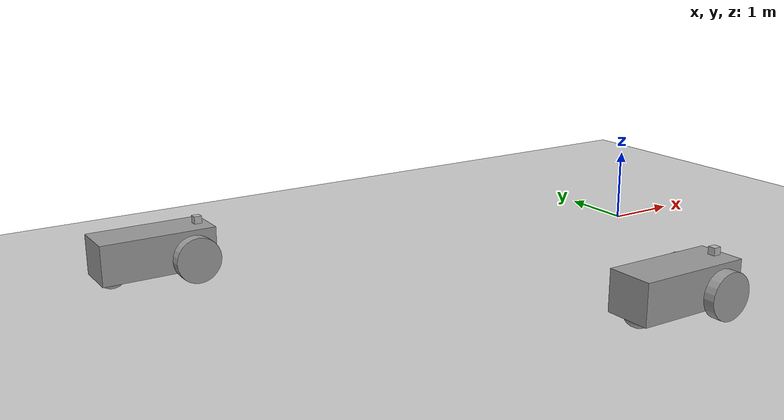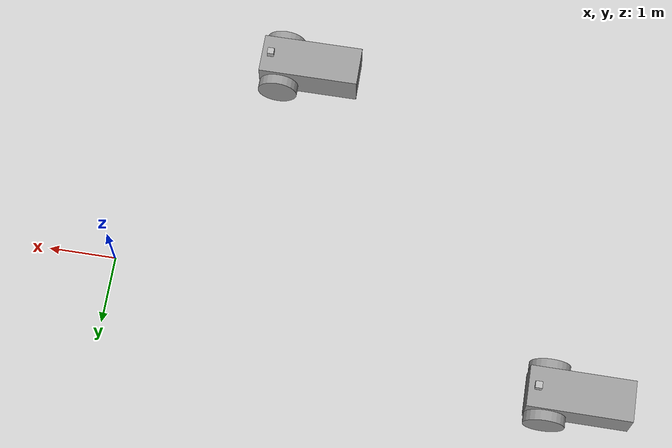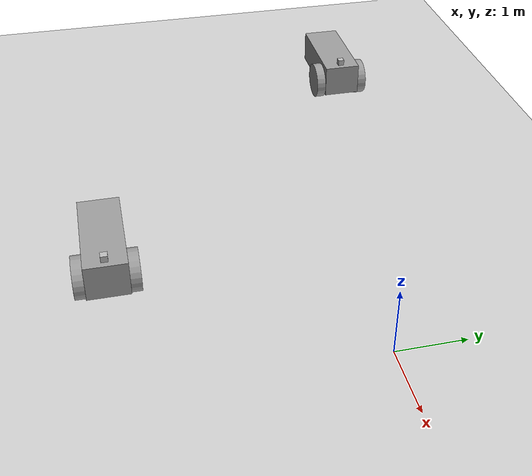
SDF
<sdf version="1.6">
 <world name="default">
  <model name="ground_plane">
   <static>1</static>
   <link name="link">
    <collision name="collision">
     <geometry><plane><normal>0 0 1</normal><size>100 100</size></plane></geometry>
     <surface>
      <contact><collide_bitmask>65535</collide_bitmask></contact>
      <friction><ode><mu>100</mu><mu2>50</mu2></ode></friction>
     </surface>
    </collision>
    <visual name="visual">
     <cast_shadows>0</cast_shadows>
     <geometry><plane><normal>0 0 1</normal><size>100 100</size></plane></geometry>
     <material>
      <script><uri>file://media/materials/scripts/gazebo.material</uri><name>Gazebo/Grey</name></script>
     </material>
    </visual>
   </link>
  </model>
  <model name="MobileRobot">
   <link name="Caster_Wheel">
    <inertial>
     <mass>1</mass>
     <inertia><ixx>0.1</ixx><ixy>0</ixy><ixz>0</ixz><iyy>0.1</iyy><iyz>0</iyz><izz>0.1</izz></inertia>
    </inertial>
    <pose>4.5329 1.28924 0.2 0 -0 0</pose>
    <visual name="visual">
     <geometry><sphere><radius>0.2</radius></sphere></geometry>
     <material>
      <lighting>1</lighting>
      <script><uri>file://media/materials/scripts/gazebo.material</uri><name>Gazebo/Grey</name></script>
      <shader type="vertex"><normal_map>__default__</normal_map></shader>
      <ambient>0.3 0.3 0.3 1</ambient>
      <diffuse>0.7 0.7 0.7 1</diffuse>
      <specular>0.01 0.01 0.01 1</specular>
      <emissive>0 0 0 1</emissive>
     </material>
    </visual>
    <collision name="collision">
     <geometry><sphere><radius>0.2</radius></sphere></geometry>
     <surface>
      <friction>
       <ode><mu>1</mu><mu2>1</mu2><fdir1>0 0 0</fdir1><slip1>0</slip1><slip2>0</slip2></ode>
       <torsional>
        <coefficient>1</coefficient>
        <patch_radius>0</patch_radius>
        <surface_radius>0</surface_radius>
        <use_patch_radius>1</use_patch_radius>
        <ode><slip>0</slip></ode>
       </torsional>
      </friction>
      <bounce><restitution_coefficient>0</restitution_coefficient><threshold>1e+06</threshold></bounce>
      <contact>
       <collide_without_contact>0</collide_without_contact>
       <collide_without_contact_bitmask>1</collide_without_contact_bitmask>
       <collide_bitmask>1</collide_bitmask>
       <ode>
        <soft_cfm>0</soft_cfm>
        <soft_erp>0.2</soft_erp>
        <kp>1e+13</kp>
        <kd>1</kd>
        <max_vel>0.01</max_vel>
        <min_depth>0</min_depth>
       </ode>
       <bullet>
        <split_impulse>1</split_impulse>
        <split_impulse_penetration_threshold>-0.01</split_impulse_penetration_threshold>
        <soft_cfm>0</soft_cfm>
        <soft_erp>0.2</soft_erp>
        <kp>1e+13</kp>
        <kd>1</kd>
       </bullet>
      </contact>
     </surface>
    </collision>
   </link>
   <link name="Chassis">
    <inertial>
     <mass>0.993173</mass>
     <inertia>
      <ixx>0.105849</ixx>
      <ixy>0</ixy>
      <ixz>0</ixz>
      <iyy>0.315735</iyy>
      <iyz>0</iyz>
      <izz>0.375415</izz>
     </inertia>
    </inertial>
    <pose>5.0829 1.28924 0.4 0 -0 0</pose>
    <visual name="visual">
     <geometry><box><size>1.5 0.6 0.528125</size></box></geometry>
     <material>
      <lighting>1</lighting>
      <script><uri>file://media/materials/scripts/gazebo.material</uri><name>Gazebo/Grey</name></script>
      <shader type="vertex"><normal_map>__default__</normal_map></shader>
      <ambient>0.3 0.3 0.3 1</ambient>
      <diffuse>0.7 0.7 0.7 1</diffuse>
      <specular>0.01 0.01 0.01 1</specular>
      <emissive>0 0 0 1</emissive>
     </material>
    </visual>
    <collision name="collision">
     <geometry><box><size>1.5 0.6 0.528125</size></box></geometry>
     <surface>
      <friction>
       <ode><mu>1</mu><mu2>1</mu2><fdir1>0 0 0</fdir1><slip1>0</slip1><slip2>0</slip2></ode>
       <torsional>
        <coefficient>1</coefficient>
        <patch_radius>0</patch_radius>
        <surface_radius>0</surface_radius>
        <use_patch_radius>1</use_patch_radius>
        <ode><slip>0</slip></ode>
       </torsional>
      </friction>
      <bounce><restitution_coefficient>0</restitution_coefficient><threshold>1e+06</threshold></bounce>
      <contact>
       <collide_without_contact>0</collide_without_contact>
       <collide_without_contact_bitmask>1</collide_without_contact_bitmask>
       <collide_bitmask>1</collide_bitmask>
       <ode>
        <soft_cfm>0</soft_cfm>
        <soft_erp>0.2</soft_erp>
        <kp>1e+13</kp>
        <kd>1</kd>
        <max_vel>0.01</max_vel>
        <min_depth>0</min_depth>
       </ode>
       <bullet>
        <split_impulse>1</split_impulse>
        <split_impulse_penetration_threshold>-0.01</split_impulse_penetration_threshold>
        <soft_cfm>0</soft_cfm>
        <soft_erp>0.2</soft_erp>
        <kp>1e+13</kp>
        <kd>1</kd>
       </bullet>
      </contact>
     </surface>
    </collision>
   </link>
   <link name="Wheel_A">
    <inertial>
     <mass>1</mass>
     <inertia><ixx>0.145833</ixx><ixy>0</ixy><ixz>0</ixz><iyy>0.145833</iyy><iyz>0</iyz><izz>0.125</izz></inertia>
    </inertial>
    <pose>5.5329 1.66427 0.3 1.5707 -0 0</pose>
    <visual name="visual">
     <geometry><cylinder><radius>0.3</radius><length>0.15</length></cylinder></geometry>
     <material>
      <lighting>1</lighting>
      <script><uri>file://media/materials/scripts/gazebo.material</uri><name>Gazebo/Grey</name></script>
      <shader type="vertex"><normal_map>__default__</normal_map></shader>
      <ambient>0.3 0.3 0.3 1</ambient>
      <diffuse>0.7 0.7 0.7 1</diffuse>
      <specular>0.01 0.01 0.01 1</specular>
      <emissive>0 0 0 1</emissive>
     </material>
    </visual>
    <collision name="collision">
     <geometry><cylinder><radius>0.3</radius><length>0.15</length></cylinder></geometry>
     <surface>
      <friction>
       <ode><mu>1</mu><mu2>1</mu2><fdir1>0 0 0</fdir1><slip1>0</slip1><slip2>0</slip2></ode>
       <torsional>
        <coefficient>1</coefficient>
        <patch_radius>0</patch_radius>
        <surface_radius>0</surface_radius>
        <use_patch_radius>1</use_patch_radius>
        <ode><slip>0</slip></ode>
       </torsional>
      </friction>
      <bounce><restitution_coefficient>0</restitution_coefficient><threshold>1e+06</threshold></bounce>
      <contact>
       <collide_without_contact>0</collide_without_contact>
       <collide_without_contact_bitmask>1</collide_without_contact_bitmask>
       <collide_bitmask>1</collide_bitmask>
       <ode>
        <soft_cfm>0</soft_cfm>
        <soft_erp>0.2</soft_erp>
        <kp>1e+13</kp>
        <kd>1</kd>
        <max_vel>0.01</max_vel>
        <min_depth>0</min_depth>
       </ode>
       <bullet>
        <split_impulse>1</split_impulse>
        <split_impulse_penetration_threshold>-0.01</split_impulse_penetration_threshold>
        <soft_cfm>0</soft_cfm>
        <soft_erp>0.2</soft_erp>
        <kp>1e+13</kp>
        <kd>1</kd>
       </bullet>
      </contact>
     </surface>
    </collision>
   </link>
   <link name="Wheel_B">
    <inertial>
     <mass>1</mass>
     <inertia><ixx>0.145833</ixx><ixy>0</ixy><ixz>0</ixz><iyy>0.145833</iyy><iyz>0</iyz><izz>0.125</izz></inertia>
    </inertial>
    <pose>5.5329 0.914211 0.3 1.5707 -0 0</pose>
    <visual name="visual">
     <geometry><cylinder><radius>0.3</radius><length>0.15</length></cylinder></geometry>
     <material>
      <lighting>1</lighting>
      <script><uri>file://media/materials/scripts/gazebo.material</uri><name>Gazebo/Grey</name></script>
      <shader type="vertex"><normal_map>__default__</normal_map></shader>
      <ambient>0.3 0.3 0.3 1</ambient>
      <diffuse>0.7 0.7 0.7 1</diffuse>
      <specular>0.01 0.01 0.01 1</specular>
      <emissive>0 0 0 1</emissive>
     </material>
    </visual>
    <collision name="collision">
     <geometry><cylinder><radius>0.3</radius><length>0.15</length></cylinder></geometry>
     <surface>
      <friction>
       <ode><mu>1</mu><mu2>1</mu2><fdir1>0 0 0</fdir1><slip1>0</slip1><slip2>0</slip2></ode>
       <torsional>
        <coefficient>1</coefficient>
        <patch_radius>0</patch_radius>
        <surface_radius>0</surface_radius>
        <use_patch_radius>1</use_patch_radius>
        <ode><slip>0</slip></ode>
       </torsional>
      </friction>
      <bounce><restitution_coefficient>0</restitution_coefficient><threshold>1e+06</threshold></bounce>
      <contact>
       <collide_without_contact>0</collide_without_contact>
       <collide_without_contact_bitmask>1</collide_without_contact_bitmask>
       <collide_bitmask>1</collide_bitmask>
       <ode>
        <soft_cfm>0</soft_cfm>
        <soft_erp>0.2</soft_erp>
        <kp>1e+13</kp>
        <kd>1</kd>
        <max_vel>0.01</max_vel>
        <min_depth>0</min_depth>
       </ode>
       <bullet>
        <split_impulse>1</split_impulse>
        <split_impulse_penetration_threshold>-0.01</split_impulse_penetration_threshold>
        <soft_cfm>0</soft_cfm>
        <soft_erp>0.2</soft_erp>
        <kp>1e+13</kp>
        <kd>1</kd>
       </bullet>
      </contact>
     </surface>
    </collision>
   </link>
   <model name="depth_camera">
    <link name="link">
     <pose>0 0 0.05 0 -0 0</pose>
     <inertial>
      <mass>0.1</mass>
      <inertia>
       <ixx>0.000166667</ixx>
       <iyy>0.000166667</iyy>
       <izz>0.000166667</izz>
       <ixy>0</ixy>
       <ixz>0</ixz>
       <iyz>0</iyz>
      </inertia>
     </inertial>
     <collision name="collision"><geometry><box><size>0.1 0.1 0.1</size></box></geometry></collision>
     <visual name="visual"><geometry><box><size>0.1 0.1 0.1</size></box></geometry></visual>
     <sensor name="camera" type="depth">
      <camera name="__default__">
       <horizontal_fov>1.047</horizontal_fov>
       <image><width>320</width><height>240</height></image>
       <clip><near>0.1</near><far>100</far></clip>
      </camera>
      <always_on>1</always_on>
      <update_rate>30</update_rate>
      <visualize>1</visualize>
     </sensor>
    </link>
    <pose>5.69644 1.28616 0.660542 0 -0 0</pose>
   </model>
   <joint name="Chassis_JOINT_0" type="ball">
    <parent>Chassis</parent>
    <child>Caster_Wheel</child>
    <physics>
     <ode><limit><cfm>0</cfm><erp>0.2</erp></limit><suspension><cfm>0</cfm><erp>0.2</erp></suspension></ode>
    </physics>
   </joint>
   <joint name="Chassis_JOINT_1" type="revolute">
    <parent>Chassis</parent>
    <child>Wheel_B</child>
    <axis>
     <xyz>0 0 1</xyz>
     <use_parent_model_frame>0</use_parent_model_frame>
     <limit>
      <lower>-1.79769e+308</lower>
      <upper>1.79769e+308</upper>
      <effort>-1</effort>
      <velocity>-1</velocity>
     </limit>
     <dynamics>
      <spring_reference>0</spring_reference>
      <spring_stiffness>0</spring_stiffness>
      <damping>0</damping>
     </dynamics>
    </axis>
    <physics>
     <ode><limit><cfm>0</cfm><erp>0.2</erp></limit><suspension><cfm>0</cfm><erp>0.2</erp></suspension></ode>
    </physics>
   </joint>
   <joint name="Chassis_JOINT_2_0" type="revolute">
    <parent>Chassis</parent>
    <child>Wheel_A</child>
    <axis>
     <xyz>0 0 1</xyz>
     <use_parent_model_frame>0</use_parent_model_frame>
     <limit>
      <lower>-1.79769e+308</lower>
      <upper>1.79769e+308</upper>
      <effort>-1</effort>
      <velocity>-1</velocity>
     </limit>
     <dynamics>
      <spring_reference>0</spring_reference>
      <spring_stiffness>0</spring_stiffness>
      <damping>0</damping>
     </dynamics>
    </axis>
    <physics>
     <ode><limit><cfm>0</cfm><erp>0.2</erp></limit><suspension><cfm>0</cfm><erp>0.2</erp></suspension></ode>
    </physics>
   </joint>
   <joint name="Chassis_JOINT_2" type="fixed">
    <parent>Chassis</parent>
    <child>depth_camera::link</child>
    <physics>
     <ode><limit><cfm>0</cfm><erp>0.2</erp></limit><suspension><cfm>0</cfm><erp>0.2</erp></suspension></ode>
    </physics>
   </joint>
   <joint name="Chassis_JOINT_5" type="revolute">
    <parent>Chassis</parent>
    <child>Wheel_A</child>
    <axis>
     <xyz>0 0 1</xyz>
     <use_parent_model_frame>0</use_parent_model_frame>
     <limit>
      <lower>-1.79769e+308</lower>
      <upper>1.79769e+308</upper>
      <effort>-1</effort>
      <velocity>-1</velocity>
     </limit>
     <dynamics>
      <spring_reference>0</spring_reference>
      <spring_stiffness>0</spring_stiffness>
      <damping>0</damping>
      <friction>0</friction>
     </dynamics>
    </axis>
    <physics>
     <ode><limit><cfm>0</cfm><erp>0.2</erp></limit><suspension><cfm>0</cfm><erp>0.2</erp></suspension></ode>
    </physics>
   </joint>
   <static>0</static>
   <plugin name="follower" filename="libFollowerPlugin.so"/>
   <pose>-7.4719 -4.69118 0 0 -0 0</pose>
  </model>
  <model name="MobileRobot_0">
   <link name="Caster_Wheel">
    <inertial>
     <mass>1</mass>
     <inertia><ixx>0.1</ixx><ixy>0</ixy><ixz>0</ixz><iyy>0.1</iyy><iyz>0</iyz><izz>0.1</izz></inertia>
    </inertial>
    <pose>4.5329 1.28924 0.2 0 -0 0</pose>
    <visual name="visual">
     <geometry><sphere><radius>0.2</radius></sphere></geometry>
     <material>
      <lighting>1</lighting>
      <script><uri>file://media/materials/scripts/gazebo.material</uri><name>Gazebo/Grey</name></script>
      <shader type="vertex"><normal_map>__default__</normal_map></shader>
      <ambient>0.3 0.3 0.3 1</ambient>
      <diffuse>0.7 0.7 0.7 1</diffuse>
      <specular>0.01 0.01 0.01 1</specular>
      <emissive>0 0 0 1</emissive>
     </material>
    </visual>
    <collision name="collision">
     <geometry><sphere><radius>0.2</radius></sphere></geometry>
     <surface>
      <friction>
       <ode><mu>1</mu><mu2>1</mu2><fdir1>0 0 0</fdir1><slip1>0</slip1><slip2>0</slip2></ode>
       <torsional>
        <coefficient>1</coefficient>
        <patch_radius>0</patch_radius>
        <surface_radius>0</surface_radius>
        <use_patch_radius>1</use_patch_radius>
        <ode><slip>0</slip></ode>
       </torsional>
      </friction>
      <bounce><restitution_coefficient>0</restitution_coefficient><threshold>1e+06</threshold></bounce>
      <contact>
       <collide_without_contact>0</collide_without_contact>
       <collide_without_contact_bitmask>1</collide_without_contact_bitmask>
       <collide_bitmask>1</collide_bitmask>
       <ode>
        <soft_cfm>0</soft_cfm>
        <soft_erp>0.2</soft_erp>
        <kp>1e+13</kp>
        <kd>1</kd>
        <max_vel>0.01</max_vel>
        <min_depth>0</min_depth>
       </ode>
       <bullet>
        <split_impulse>1</split_impulse>
        <split_impulse_penetration_threshold>-0.01</split_impulse_penetration_threshold>
        <soft_cfm>0</soft_cfm>
        <soft_erp>0.2</soft_erp>
        <kp>1e+13</kp>
        <kd>1</kd>
       </bullet>
      </contact>
     </surface>
    </collision>
   </link>
   <link name="Chassis">
    <inertial>
     <mass>0.993173</mass>
     <inertia>
      <ixx>0.105849</ixx>
      <ixy>0</ixy>
      <ixz>0</ixz>
      <iyy>0.315735</iyy>
      <iyz>0</iyz>
      <izz>0.375415</izz>
     </inertia>
    </inertial>
    <pose>5.0829 1.28924 0.4 0 -0 0</pose>
    <visual name="visual">
     <geometry><box><size>1.5 0.6 0.528125</size></box></geometry>
     <material>
      <lighting>1</lighting>
      <script><uri>file://media/materials/scripts/gazebo.material</uri><name>Gazebo/Grey</name></script>
      <shader type="vertex"><normal_map>__default__</normal_map></shader>
      <ambient>0.3 0.3 0.3 1</ambient>
      <diffuse>0.7 0.7 0.7 1</diffuse>
      <specular>0.01 0.01 0.01 1</specular>
      <emissive>0 0 0 1</emissive>
     </material>
    </visual>
    <collision name="collision">
     <geometry><box><size>1.5 0.6 0.528125</size></box></geometry>
     <surface>
      <friction>
       <ode><mu>1</mu><mu2>1</mu2><fdir1>0 0 0</fdir1><slip1>0</slip1><slip2>0</slip2></ode>
       <torsional>
        <coefficient>1</coefficient>
        <patch_radius>0</patch_radius>
        <surface_radius>0</surface_radius>
        <use_patch_radius>1</use_patch_radius>
        <ode><slip>0</slip></ode>
       </torsional>
      </friction>
      <bounce><restitution_coefficient>0</restitution_coefficient><threshold>1e+06</threshold></bounce>
      <contact>
       <collide_without_contact>0</collide_without_contact>
       <collide_without_contact_bitmask>1</collide_without_contact_bitmask>
       <collide_bitmask>1</collide_bitmask>
       <ode>
        <soft_cfm>0</soft_cfm>
        <soft_erp>0.2</soft_erp>
        <kp>1e+13</kp>
        <kd>1</kd>
        <max_vel>0.01</max_vel>
        <min_depth>0</min_depth>
       </ode>
       <bullet>
        <split_impulse>1</split_impulse>
        <split_impulse_penetration_threshold>-0.01</split_impulse_penetration_threshold>
        <soft_cfm>0</soft_cfm>
        <soft_erp>0.2</soft_erp>
        <kp>1e+13</kp>
        <kd>1</kd>
       </bullet>
      </contact>
     </surface>
    </collision>
   </link>
   <link name="Wheel_A">
    <inertial>
     <mass>1</mass>
     <inertia><ixx>0.145833</ixx><ixy>0</ixy><ixz>0</ixz><iyy>0.145833</iyy><iyz>0</iyz><izz>0.125</izz></inertia>
    </inertial>
    <pose>5.5329 1.66427 0.3 1.5707 -0 0</pose>
    <visual name="visual">
     <geometry><cylinder><radius>0.3</radius><length>0.15</length></cylinder></geometry>
     <material>
      <lighting>1</lighting>
      <script><uri>file://media/materials/scripts/gazebo.material</uri><name>Gazebo/Grey</name></script>
      <shader type="vertex"><normal_map>__default__</normal_map></shader>
      <ambient>0.3 0.3 0.3 1</ambient>
      <diffuse>0.7 0.7 0.7 1</diffuse>
      <specular>0.01 0.01 0.01 1</specular>
      <emissive>0 0 0 1</emissive>
     </material>
    </visual>
    <collision name="collision">
     <geometry><cylinder><radius>0.3</radius><length>0.15</length></cylinder></geometry>
     <surface>
      <friction>
       <ode><mu>1</mu><mu2>1</mu2><fdir1>0 0 0</fdir1><slip1>0</slip1><slip2>0</slip2></ode>
       <torsional>
        <coefficient>1</coefficient>
        <patch_radius>0</patch_radius>
        <surface_radius>0</surface_radius>
        <use_patch_radius>1</use_patch_radius>
        <ode><slip>0</slip></ode>
       </torsional>
      </friction>
      <bounce><restitution_coefficient>0</restitution_coefficient><threshold>1e+06</threshold></bounce>
      <contact>
       <collide_without_contact>0</collide_without_contact>
       <collide_without_contact_bitmask>1</collide_without_contact_bitmask>
       <collide_bitmask>1</collide_bitmask>
       <ode>
        <soft_cfm>0</soft_cfm>
        <soft_erp>0.2</soft_erp>
        <kp>1e+13</kp>
        <kd>1</kd>
        <max_vel>0.01</max_vel>
        <min_depth>0</min_depth>
       </ode>
       <bullet>
        <split_impulse>1</split_impulse>
        <split_impulse_penetration_threshold>-0.01</split_impulse_penetration_threshold>
        <soft_cfm>0</soft_cfm>
        <soft_erp>0.2</soft_erp>
        <kp>1e+13</kp>
        <kd>1</kd>
       </bullet>
      </contact>
     </surface>
    </collision>
   </link>
   <link name="Wheel_B">
    <inertial>
     <mass>1</mass>
     <inertia><ixx>0.145833</ixx><ixy>0</ixy><ixz>0</ixz><iyy>0.145833</iyy><iyz>0</iyz><izz>0.125</izz></inertia>
    </inertial>
    <pose>5.5329 0.914211 0.3 1.5707 -0 0</pose>
    <visual name="visual">
     <geometry><cylinder><radius>0.3</radius><length>0.15</length></cylinder></geometry>
     <material>
      <lighting>1</lighting>
      <script><uri>file://media/materials/scripts/gazebo.material</uri><name>Gazebo/Grey</name></script>
      <shader type="vertex"><normal_map>__default__</normal_map></shader>
      <ambient>0.3 0.3 0.3 1</ambient>
      <diffuse>0.7 0.7 0.7 1</diffuse>
      <specular>0.01 0.01 0.01 1</specular>
      <emissive>0 0 0 1</emissive>
     </material>
    </visual>
    <collision name="collision">
     <geometry><cylinder><radius>0.3</radius><length>0.15</length></cylinder></geometry>
     <surface>
      <friction>
       <ode><mu>1</mu><mu2>1</mu2><fdir1>0 0 0</fdir1><slip1>0</slip1><slip2>0</slip2></ode>
       <torsional>
        <coefficient>1</coefficient>
        <patch_radius>0</patch_radius>
        <surface_radius>0</surface_radius>
        <use_patch_radius>1</use_patch_radius>
        <ode><slip>0</slip></ode>
       </torsional>
      </friction>
      <bounce><restitution_coefficient>0</restitution_coefficient><threshold>1e+06</threshold></bounce>
      <contact>
       <collide_without_contact>0</collide_without_contact>
       <collide_without_contact_bitmask>1</collide_without_contact_bitmask>
       <collide_bitmask>1</collide_bitmask>
       <ode>
        <soft_cfm>0</soft_cfm>
        <soft_erp>0.2</soft_erp>
        <kp>1e+13</kp>
        <kd>1</kd>
        <max_vel>0.01</max_vel>
        <min_depth>0</min_depth>
       </ode>
       <bullet>
        <split_impulse>1</split_impulse>
        <split_impulse_penetration_threshold>-0.01</split_impulse_penetration_threshold>
        <soft_cfm>0</soft_cfm>
        <soft_erp>0.2</soft_erp>
        <kp>1e+13</kp>
        <kd>1</kd>
       </bullet>
      </contact>
     </surface>
    </collision>
   </link>
   <model name="depth_camera">
    <link name="link">
     <pose>0 0 0.05 0 -0 0</pose>
     <inertial>
      <mass>0.1</mass>
      <inertia>
       <ixx>0.000166667</ixx>
       <iyy>0.000166667</iyy>
       <izz>0.000166667</izz>
       <ixy>0</ixy>
       <ixz>0</ixz>
       <iyz>0</iyz>
      </inertia>
     </inertial>
     <collision name="collision"><geometry><box><size>0.1 0.1 0.1</size></box></geometry></collision>
     <visual name="visual"><geometry><box><size>0.1 0.1 0.1</size></box></geometry></visual>
     <sensor name="camera" type="depth">
      <camera name="__default__">
       <horizontal_fov>1.047</horizontal_fov>
       <image><width>320</width><height>240</height></image>
       <clip><near>0.1</near><far>100</far></clip>
      </camera>
      <always_on>1</always_on>
      <update_rate>30</update_rate>
      <visualize>1</visualize>
     </sensor>
    </link>
    <pose>5.69644 1.28616 0.660542 0 -0 0</pose>
   </model>
   <joint name="Chassis_JOINT_0" type="ball">
    <parent>Chassis</parent>
    <child>Caster_Wheel</child>
    <physics>
     <ode><limit><cfm>0</cfm><erp>0.2</erp></limit><suspension><cfm>0</cfm><erp>0.2</erp></suspension></ode>
    </physics>
   </joint>
   <joint name="Chassis_JOINT_1" type="revolute">
    <parent>Chassis</parent>
    <child>Wheel_B</child>
    <axis>
     <xyz>0 0 1</xyz>
     <use_parent_model_frame>0</use_parent_model_frame>
     <limit>
      <lower>-1.79769e+308</lower>
      <upper>1.79769e+308</upper>
      <effort>-1</effort>
      <velocity>-1</velocity>
     </limit>
     <dynamics>
      <spring_reference>0</spring_reference>
      <spring_stiffness>0</spring_stiffness>
      <damping>0</damping>
     </dynamics>
    </axis>
    <physics>
     <ode><limit><cfm>0</cfm><erp>0.2</erp></limit><suspension><cfm>0</cfm><erp>0.2</erp></suspension></ode>
    </physics>
   </joint>
   <joint name="Chassis_JOINT_2_0" type="revolute">
    <parent>Chassis</parent>
    <child>Wheel_A</child>
    <axis>
     <xyz>0 0 1</xyz>
     <use_parent_model_frame>0</use_parent_model_frame>
     <limit>
      <lower>-1.79769e+308</lower>
      <upper>1.79769e+308</upper>
      <effort>-1</effort>
      <velocity>-1</velocity>
     </limit>
     <dynamics>
      <spring_reference>0</spring_reference>
      <spring_stiffness>0</spring_stiffness>
      <damping>0</damping>
     </dynamics>
    </axis>
    <physics>
     <ode><limit><cfm>0</cfm><erp>0.2</erp></limit><suspension><cfm>0</cfm><erp>0.2</erp></suspension></ode>
    </physics>
   </joint>
   <joint name="Chassis_JOINT_2" type="fixed">
    <parent>Chassis</parent>
    <child>depth_camera::link</child>
    <physics>
     <ode><limit><cfm>0</cfm><erp>0.2</erp></limit><suspension><cfm>0</cfm><erp>0.2</erp></suspension></ode>
    </physics>
   </joint>
   <joint name="Chassis_JOINT_5" type="revolute">
    <parent>Chassis</parent>
    <child>Wheel_A</child>
    <axis>
     <xyz>0 0 1</xyz>
     <use_parent_model_frame>0</use_parent_model_frame>
     <limit>
      <lower>-1.79769e+308</lower>
      <upper>1.79769e+308</upper>
      <effort>-1</effort>
      <velocity>-1</velocity>
     </limit>
     <dynamics>
      <spring_reference>0</spring_reference>
      <spring_stiffness>0</spring_stiffness>
      <damping>0</damping>
      <friction>0</friction>
     </dynamics>
    </axis>
    <physics>
     <ode><limit><cfm>0</cfm><erp>0.2</erp></limit><suspension><cfm>0</cfm><erp>0.2</erp></suspension></ode>
    </physics>
   </joint>
   <static>0</static>
   <plugin name="follower" filename="libFollowerPlugin.so"/>
   <pose>-12.0713 -0.142804 0 0 -0 0</pose>
  </model>
 </world>
</sdf>
